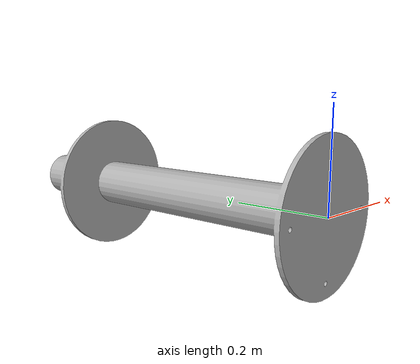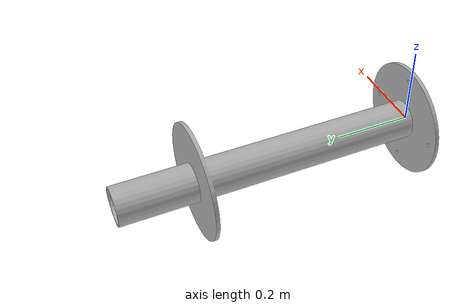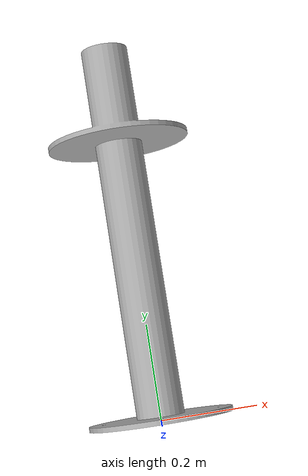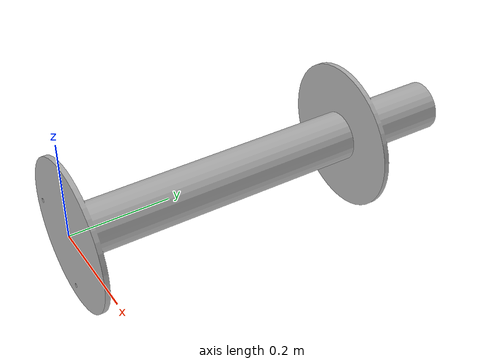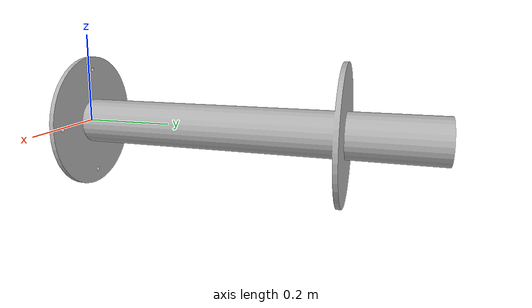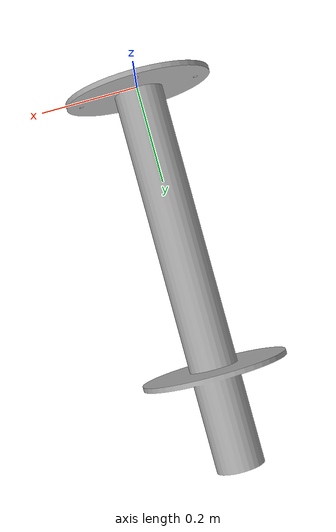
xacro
<?xml version="1.0" ?>
<robot name="Pole" xmlns:xacro="http://www.ros.org/wiki/xacro">

<xacro:include filename="$(find Pole_description)/urdf/materials.xacro" />
<xacro:include filename="$(find Pole_description)/urdf/Pole.trans" />
<xacro:include filename="$(find Pole_description)/urdf/Pole.gazebo" />
<link name="base_link">
  <inertial>
    <origin xyz="-7.347924373553275e-16 0.34672971323978014 0.0" rpy="0 0 0"/>
    <mass value="20.210101159992163"/>
    <inertia ixx="1.565302" iyy="0.145166" izz="1.565302" ixy="-0.0" iyz="-0.0" ixz="0.0"/>
  </inertial>
  <visual>
    <origin xyz="0 0 0" rpy="0 0 0"/>
    <geometry>
      <mesh filename="package://Pole_description/meshes/base_link.stl" scale="0.001 0.001 0.001"/>
    </geometry>
    <material name="silver"/>
  </visual>
  <collision>
    <origin xyz="0 0 0" rpy="0 0 0"/>
    <geometry>
      <mesh filename="package://Pole_description/meshes/base_link.stl" scale="0.001 0.001 0.001"/>
    </geometry>
  </collision>
</link>

</robot>

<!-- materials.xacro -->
<robot name="Pole" xmlns:xacro="http://www.ros.org/wiki/xacro" >

<material name="silver">
  <color rgba="0.700 0.700 0.700 1.000"/>
</material>

</robot>

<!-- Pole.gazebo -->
<robot name="Pole" xmlns:xacro="http://www.ros.org/wiki/xacro" >

<xacro:property name="body_color" value="Gazebo/Silver" />

<gazebo>
  <plugin name="control" filename="libgazebo_ros_control.so"/>
</gazebo>
<gazebo reference="base_link">
  <material>${body_color}</material>
  <mu1>0.2</mu1>
  <mu2>0.2</mu2>
  <selfCollide>true</selfCollide>
  <gravity>true</gravity>
</gazebo>

</robot>
